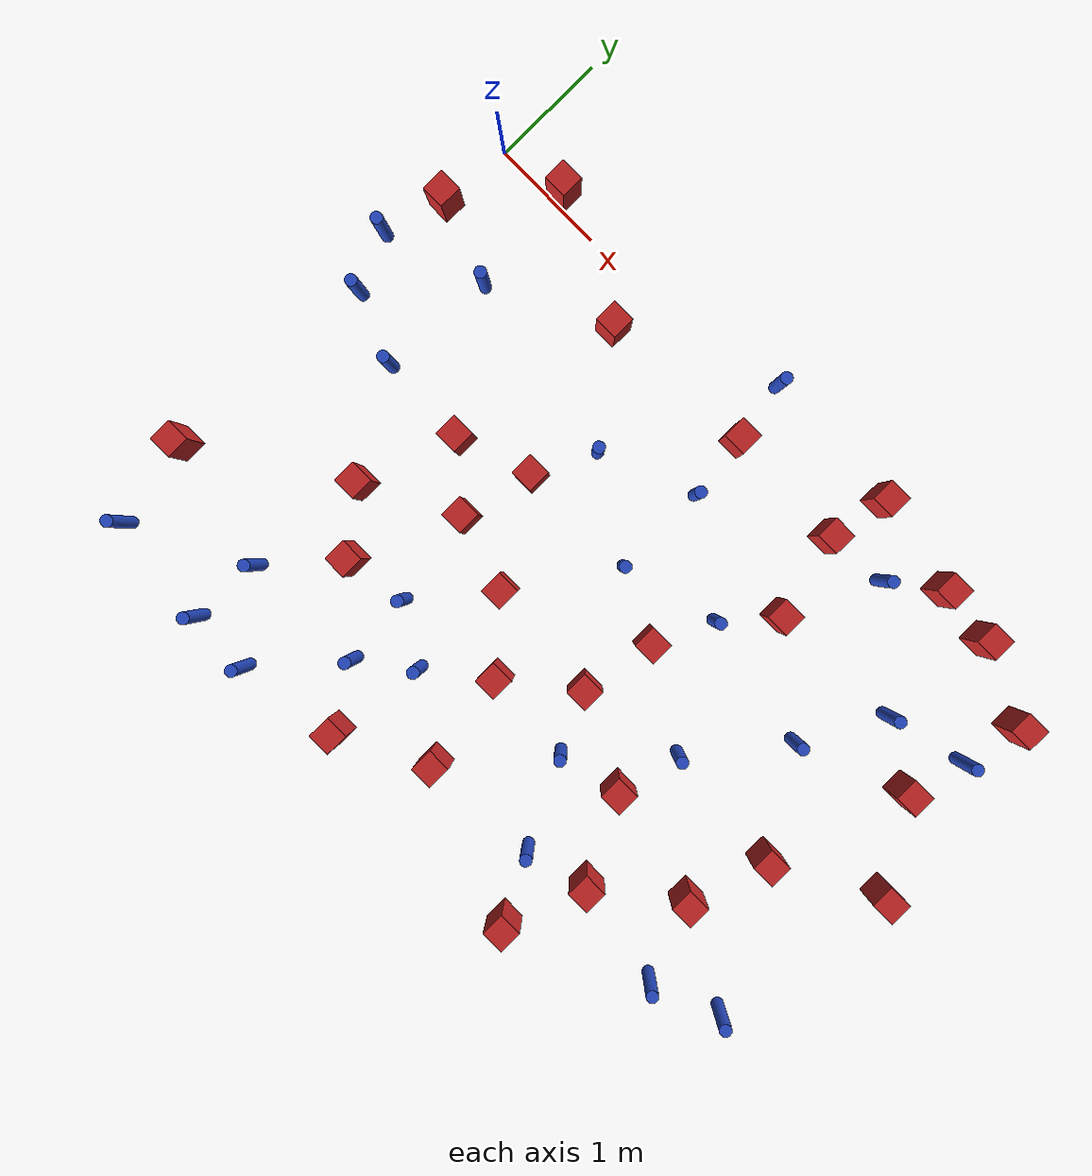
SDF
<sdf version="1.6">
 <model name="dense_19">
  <model name="pole_obstacle0">
   <static>true</static>
   <pose>2.88885699599 0.218342367784 2.88873142074e-08 -9.90536689395e-09 4.60219949e-07 -1.20965994954e-07</pose>
   <link name="link">
    <pose>0 0 0.3 0 -0 0</pose>
    <inertial>
     <mass>1</mass>
     <inertia><ixx>0.145833</ixx><ixy>0</ixy><ixz>0</ixz><iyy>0.145833</iyy><iyz>0</iyz><izz>0.125</izz></inertia>
    </inertial>
    <collision name="collision">
     <geometry><cylinder><radius>0.05</radius><length>.6</length></cylinder></geometry>
    </collision>
    <visual name="visual">
     <geometry><cylinder><radius>0.05</radius><length>.6</length></cylinder></geometry>
     <material>
      <script><name>Gazebo/Blue</name><uri>file://media/materials/scripts/gazebo.material</uri></script>
     </material>
    </visual>
   </link>
  </model>
  <model name="square_post_obstacle7">
   <static>true</static>
   <pose>1.63549741798 -0.384665157309 8.22691968438e-08 7.2212513382e-06 -7.54495500217e-07 2.29674213826e-05</pose>
   <link name="link">
    <pose>0 0 0.25 0 -0 0</pose>
    <inertial>
     <mass>100</mass>
     <inertia>
      <ixx>0.166667</ixx>
      <ixy>0</ixy>
      <ixz>0</ixz>
      <iyy>0.166667</iyy>
      <iyz>0</iyz>
      <izz>0.166667</izz>
     </inertia>
    </inertial>
    <collision name="collision"><geometry><box><size>.2 .2 .5</size></box></geometry></collision>
    <visual name="visual">
     <geometry><box><size>.2 .2 .5</size></box></geometry>
     <material>
      <script><name>Gazebo/Red</name><uri>file://media/materials/scripts/gazebo.material</uri></script>
     </material>
    </visual>
   </link>
  </model>
  <model name="pole_obstacle7">
   <static>true</static>
   <pose>5.50749667749 -3.81803511393 2.88873142074e-08 -9.90536690245e-09 4.6021994898e-07 -1.20965994966e-07</pose>
   <link name="link">
    <pose>0 0 0.3 0 -0 0</pose>
    <inertial>
     <mass>1</mass>
     <inertia><ixx>0.145833</ixx><ixy>0</ixy><ixz>0</ixz><iyy>0.145833</iyy><iyz>0</iyz><izz>0.125</izz></inertia>
    </inertial>
    <collision name="collision">
     <geometry><cylinder><radius>0.05</radius><length>.6</length></cylinder></geometry>
    </collision>
    <visual name="visual">
     <geometry><cylinder><radius>0.05</radius><length>.6</length></cylinder></geometry>
     <material>
      <script><name>Gazebo/Blue</name><uri>file://media/materials/scripts/gazebo.material</uri></script>
     </material>
    </visual>
   </link>
  </model>
  <model name="square_post_obstacle9">
   <static>true</static>
   <pose>2.50126027885 -2.48764107828 8.22691968438e-08 7.2212513382e-06 -7.54495500217e-07 2.29674213826e-05</pose>
   <link name="link">
    <pose>0 0 0.25 0 -0 0</pose>
    <inertial>
     <mass>100</mass>
     <inertia>
      <ixx>0.166667</ixx>
      <ixy>0</ixy>
      <ixz>0</ixz>
      <iyy>0.166667</iyy>
      <iyz>0</iyz>
      <izz>0.166667</izz>
     </inertia>
    </inertial>
    <collision name="collision"><geometry><box><size>.2 .2 .5</size></box></geometry></collision>
    <visual name="visual">
     <geometry><box><size>.2 .2 .5</size></box></geometry>
     <material>
      <script><name>Gazebo/Red</name><uri>file://media/materials/scripts/gazebo.material</uri></script>
     </material>
    </visual>
   </link>
  </model>
  <model name="square_post_obstacle24">
   <static>true</static>
   <pose>1.8701958105 -2.29422337343 8.22691968438e-08 7.2212513382e-06 -7.54495500217e-07 2.29674213826e-05</pose>
   <link name="link">
    <pose>0 0 0.25 0 -0 0</pose>
    <inertial>
     <mass>100</mass>
     <inertia>
      <ixx>0.166667</ixx>
      <ixy>0</ixy>
      <ixz>0</ixz>
      <iyy>0.166667</iyy>
      <iyz>0</iyz>
      <izz>0.166667</izz>
     </inertia>
    </inertial>
    <collision name="collision"><geometry><box><size>.2 .2 .5</size></box></geometry></collision>
    <visual name="visual">
     <geometry><box><size>.2 .2 .5</size></box></geometry>
     <material>
      <script><name>Gazebo/Red</name><uri>file://media/materials/scripts/gazebo.material</uri></script>
     </material>
    </visual>
   </link>
  </model>
  <model name="square_post_obstacle26">
   <static>true</static>
   <pose>-0.125004662885 -3.47699923398 8.22691968438e-08 7.22125133819e-06 -7.54495500217e-07 2.29674213826e-05</pose>
   <link name="link">
    <pose>0 0 0.25 0 -0 0</pose>
    <inertial>
     <mass>100</mass>
     <inertia>
      <ixx>0.166667</ixx>
      <ixy>0</ixy>
      <ixz>0</ixz>
      <iyy>0.166667</iyy>
      <iyz>0</iyz>
      <izz>0.166667</izz>
     </inertia>
    </inertial>
    <collision name="collision"><geometry><box><size>.2 .2 .5</size></box></geometry></collision>
    <visual name="visual">
     <geometry><box><size>.2 .2 .5</size></box></geometry>
     <material>
      <script><name>Gazebo/Red</name><uri>file://media/materials/scripts/gazebo.material</uri></script>
     </material>
    </visual>
   </link>
  </model>
  <model name="square_post_obstacle31">
   <static>true</static>
   <pose>4.20026988098 -1.06145336706 8.22691968438e-08 7.2212513382e-06 -7.54495500217e-07 2.29674213826e-05</pose>
   <link name="link">
    <pose>0 0 0.25 0 -0 0</pose>
    <inertial>
     <mass>100</mass>
     <inertia>
      <ixx>0.166667</ixx>
      <ixy>0</ixy>
      <ixz>0</ixz>
      <iyy>0.166667</iyy>
      <iyz>0</iyz>
      <izz>0.166667</izz>
     </inertia>
    </inertial>
    <collision name="collision"><geometry><box><size>.2 .2 .5</size></box></geometry></collision>
    <visual name="visual">
     <geometry><box><size>.2 .2 .5</size></box></geometry>
     <material>
      <script><name>Gazebo/Red</name><uri>file://media/materials/scripts/gazebo.material</uri></script>
     </material>
    </visual>
   </link>
  </model>
  <model name="pole_obstacle39">
   <static>true</static>
   <pose>6.07914142735 -3.60286633807 2.88873142074e-08 -9.90536690245e-09 4.6021994898e-07 -1.20965994966e-07</pose>
   <link name="link">
    <pose>0 0 0.3 0 -0 0</pose>
    <inertial>
     <mass>1</mass>
     <inertia><ixx>0.145833</ixx><ixy>0</ixy><ixz>0</ixz><iyy>0.145833</iyy><iyz>0</iyz><izz>0.125</izz></inertia>
    </inertial>
    <collision name="collision">
     <geometry><cylinder><radius>0.05</radius><length>.6</length></cylinder></geometry>
    </collision>
    <visual name="visual">
     <geometry><cylinder><radius>0.05</radius><length>.6</length></cylinder></geometry>
     <material>
      <script><name>Gazebo/Blue</name><uri>file://media/materials/scripts/gazebo.material</uri></script>
     </material>
    </visual>
   </link>
  </model>
  <model name="pole_obstacle48">
   <static>true</static>
   <pose>5.35859806863 -1.01544605363 2.88873142074e-08 -9.90536689582e-09 4.60219948995e-07 -1.20965994957e-07</pose>
   <link name="link">
    <pose>0 0 0.3 0 -0 0</pose>
    <inertial>
     <mass>1</mass>
     <inertia><ixx>0.145833</ixx><ixy>0</ixy><ixz>0</ixz><iyy>0.145833</iyy><iyz>0</iyz><izz>0.125</izz></inertia>
    </inertial>
    <collision name="collision">
     <geometry><cylinder><radius>0.05</radius><length>.6</length></cylinder></geometry>
    </collision>
    <visual name="visual">
     <geometry><cylinder><radius>0.05</radius><length>.6</length></cylinder></geometry>
     <material>
      <script><name>Gazebo/Blue</name><uri>file://media/materials/scripts/gazebo.material</uri></script>
     </material>
    </visual>
   </link>
  </model>
  <model name="square_post_obstacle50">
   <static>true</static>
   <pose>4.96751503702 0.0074582383252 8.22691968438e-08 7.2212513382e-06 -7.54495500217e-07 2.29674213826e-05</pose>
   <link name="link">
    <pose>0 0 0.25 0 -0 0</pose>
    <inertial>
     <mass>100</mass>
     <inertia>
      <ixx>0.166667</ixx>
      <ixy>0</ixy>
      <ixz>0</ixz>
      <iyy>0.166667</iyy>
      <iyz>0</iyz>
      <izz>0.166667</izz>
     </inertia>
    </inertial>
    <collision name="collision"><geometry><box><size>.2 .2 .5</size></box></geometry></collision>
    <visual name="visual">
     <geometry><box><size>.2 .2 .5</size></box></geometry>
     <material>
      <script><name>Gazebo/Red</name><uri>file://media/materials/scripts/gazebo.material</uri></script>
     </material>
    </visual>
   </link>
  </model>
  <model name="square_post_obstacle54">
   <static>true</static>
   <pose>6.33580919159 -2.04430219855 8.22691968438e-08 7.2212513382e-06 -7.54495500217e-07 2.29674213826e-05</pose>
   <link name="link">
    <pose>0 0 0.25 0 -0 0</pose>
    <inertial>
     <mass>100</mass>
     <inertia>
      <ixx>0.166667</ixx>
      <ixy>0</ixy>
      <ixz>0</ixz>
      <iyy>0.166667</iyy>
      <iyz>0</iyz>
      <izz>0.166667</izz>
     </inertia>
    </inertial>
    <collision name="collision"><geometry><box><size>.2 .2 .5</size></box></geometry></collision>
    <visual name="visual">
     <geometry><box><size>.2 .2 .5</size></box></geometry>
     <material>
      <script><name>Gazebo/Red</name><uri>file://media/materials/scripts/gazebo.material</uri></script>
     </material>
    </visual>
   </link>
  </model>
  <model name="pole_obstacle54">
   <static>true</static>
   <pose>2.25785999035 -1.17319295104 2.88873142074e-08 -9.90536689395e-09 4.60219949e-07 -1.20965994953e-07</pose>
   <link name="link">
    <pose>0 0 0.3 0 -0 0</pose>
    <inertial>
     <mass>1</mass>
     <inertia><ixx>0.145833</ixx><ixy>0</ixy><ixz>0</ixz><iyy>0.145833</iyy><iyz>0</iyz><izz>0.125</izz></inertia>
    </inertial>
    <collision name="collision">
     <geometry><cylinder><radius>0.05</radius><length>.6</length></cylinder></geometry>
    </collision>
    <visual name="visual">
     <geometry><cylinder><radius>0.05</radius><length>.6</length></cylinder></geometry>
     <material>
      <script><name>Gazebo/Blue</name><uri>file://media/materials/scripts/gazebo.material</uri></script>
     </material>
    </visual>
   </link>
  </model>
  <model name="square_post_obstacle58">
   <static>true</static>
   <pose>2.96455247818 -3.01054409783 8.22691968438e-08 7.2212513382e-06 -7.54495500217e-07 2.29674213826e-05</pose>
   <link name="link">
    <pose>0 0 0.25 0 -0 0</pose>
    <inertial>
     <mass>100</mass>
     <inertia>
      <ixx>0.166667</ixx>
      <ixy>0</ixy>
      <ixz>0</ixz>
      <iyy>0.166667</iyy>
      <iyz>0</iyz>
      <izz>0.166667</izz>
     </inertia>
    </inertial>
    <collision name="collision"><geometry><box><size>.2 .2 .5</size></box></geometry></collision>
    <visual name="visual">
     <geometry><box><size>.2 .2 .5</size></box></geometry>
     <material>
      <script><name>Gazebo/Red</name><uri>file://media/materials/scripts/gazebo.material</uri></script>
     </material>
    </visual>
   </link>
  </model>
  <model name="pole_obstacle57">
   <static>true</static>
   <pose>0.666566140551 -0.875571736039 2.88873142074e-08 -9.90536689967e-09 4.60219948986e-07 -1.20965994963e-07</pose>
   <link name="link">
    <pose>0 0 0.3 0 -0 0</pose>
    <inertial>
     <mass>1</mass>
     <inertia><ixx>0.145833</ixx><ixy>0</ixy><ixz>0</ixz><iyy>0.145833</iyy><iyz>0</iyz><izz>0.125</izz></inertia>
    </inertial>
    <collision name="collision">
     <geometry><cylinder><radius>0.05</radius><length>.6</length></cylinder></geometry>
    </collision>
    <visual name="visual">
     <geometry><cylinder><radius>0.05</radius><length>.6</length></cylinder></geometry>
     <material>
      <script><name>Gazebo/Blue</name><uri>file://media/materials/scripts/gazebo.material</uri></script>
     </material>
    </visual>
   </link>
  </model>
  <model name="square_post_obstacle64">
   <static>true</static>
   <pose>3.52086572161 -2.57109439381 8.22691968438e-08 7.2212513382e-06 -7.54495500217e-07 2.29674213826e-05</pose>
   <link name="link">
    <pose>0 0 0.25 0 -0 0</pose>
    <inertial>
     <mass>100</mass>
     <inertia>
      <ixx>0.166667</ixx>
      <ixy>0</ixy>
      <ixz>0</ixz>
      <iyy>0.166667</iyy>
      <iyz>0</iyz>
      <izz>0.166667</izz>
     </inertia>
    </inertial>
    <collision name="collision"><geometry><box><size>.2 .2 .5</size></box></geometry></collision>
    <visual name="visual">
     <geometry><box><size>.2 .2 .5</size></box></geometry>
     <material>
      <script><name>Gazebo/Red</name><uri>file://media/materials/scripts/gazebo.material</uri></script>
     </material>
    </visual>
   </link>
  </model>
  <model name="square_post_obstacle67">
   <static>true</static>
   <pose>3.1018461195 -3.83028561094 8.22691968438e-08 7.2212513382e-06 -7.54495500217e-07 2.29674213826e-05</pose>
   <link name="link">
    <pose>0 0 0.25 0 -0 0</pose>
    <inertial>
     <mass>100</mass>
     <inertia>
      <ixx>0.166667</ixx>
      <ixy>0</ixy>
      <ixz>0</ixz>
      <iyy>0.166667</iyy>
      <iyz>0</iyz>
      <izz>0.166667</izz>
     </inertia>
    </inertial>
    <collision name="collision"><geometry><box><size>.2 .2 .5</size></box></geometry></collision>
    <visual name="visual">
     <geometry><box><size>.2 .2 .5</size></box></geometry>
     <material>
      <script><name>Gazebo/Red</name><uri>file://media/materials/scripts/gazebo.material</uri></script>
     </material>
    </visual>
   </link>
  </model>
  <model name="pole_obstacle65">
   <static>true</static>
   <pose>6.03024125751 -0.854266662241 2.88873142074e-08 -9.90536689837e-09 4.60219948989e-07 -1.2096599496e-07</pose>
   <link name="link">
    <pose>0 0 0.3 0 -0 0</pose>
    <inertial>
     <mass>1</mass>
     <inertia><ixx>0.145833</ixx><ixy>0</ixy><ixz>0</ixz><iyy>0.145833</iyy><iyz>0</iyz><izz>0.125</izz></inertia>
    </inertial>
    <collision name="collision">
     <geometry><cylinder><radius>0.05</radius><length>.6</length></cylinder></geometry>
    </collision>
    <visual name="visual">
     <geometry><cylinder><radius>0.05</radius><length>.6</length></cylinder></geometry>
     <material>
      <script><name>Gazebo/Blue</name><uri>file://media/materials/scripts/gazebo.material</uri></script>
     </material>
    </visual>
   </link>
  </model>
  <model name="square_post_obstacle69">
   <static>true</static>
   <pose>4.27492066907 -2.94388003536 8.22691968438e-08 7.2212513382e-06 -7.54495500217e-07 2.29674213826e-05</pose>
   <link name="link">
    <pose>0 0 0.25 0 -0 0</pose>
    <inertial>
     <mass>100</mass>
     <inertia>
      <ixx>0.166667</ixx>
      <ixy>0</ixy>
      <ixz>0</ixz>
      <iyy>0.166667</iyy>
      <iyz>0</iyz>
      <izz>0.166667</izz>
     </inertia>
    </inertial>
    <collision name="collision"><geometry><box><size>.2 .2 .5</size></box></geometry></collision>
    <visual name="visual">
     <geometry><box><size>.2 .2 .5</size></box></geometry>
     <material>
      <script><name>Gazebo/Red</name><uri>file://media/materials/scripts/gazebo.material</uri></script>
     </material>
    </visual>
   </link>
  </model>
  <model name="square_post_obstacle73">
   <static>true</static>
   <pose>5.48747656037 -2.49697505619 8.22691968438e-08 7.2212513382e-06 -7.54495500217e-07 2.29674213826e-05</pose>
   <link name="link">
    <pose>0 0 0.25 0 -0 0</pose>
    <inertial>
     <mass>100</mass>
     <inertia>
      <ixx>0.166667</ixx>
      <ixy>0</ixy>
      <ixz>0</ixz>
      <iyy>0.166667</iyy>
      <iyz>0</iyz>
      <izz>0.166667</izz>
     </inertia>
    </inertial>
    <collision name="collision"><geometry><box><size>.2 .2 .5</size></box></geometry></collision>
    <visual name="visual">
     <geometry><box><size>.2 .2 .5</size></box></geometry>
     <material>
      <script><name>Gazebo/Red</name><uri>file://media/materials/scripts/gazebo.material</uri></script>
     </material>
    </visual>
   </link>
  </model>
  <model name="square_post_obstacle74">
   <static>true</static>
   <pose>1.09983535135 -2.69447167061 8.22691968438e-08 7.2212513382e-06 -7.54495500217e-07 2.29674213826e-05</pose>
   <link name="link">
    <pose>0 0 0.25 0 -0 0</pose>
    <inertial>
     <mass>100</mass>
     <inertia>
      <ixx>0.166667</ixx>
      <ixy>0</ixy>
      <ixz>0</ixz>
      <iyy>0.166667</iyy>
      <iyz>0</iyz>
      <izz>0.166667</izz>
     </inertia>
    </inertial>
    <collision name="collision"><geometry><box><size>.2 .2 .5</size></box></geometry></collision>
    <visual name="visual">
     <geometry><box><size>.2 .2 .5</size></box></geometry>
     <material>
      <script><name>Gazebo/Red</name><uri>file://media/materials/scripts/gazebo.material</uri></script>
     </material>
    </visual>
   </link>
  </model>
  <model name="pole_obstacle72">
   <static>true</static>
   <pose>-0.188298759405 -1.14795797744 2.88873142074e-08 -9.90536689666e-09 4.60219948993e-07 -1.20965994958e-07</pose>
   <link name="link">
    <pose>0 0 0.3 0 -0 0</pose>
    <inertial>
     <mass>1</mass>
     <inertia><ixx>0.145833</ixx><ixy>0</ixy><ixz>0</ixz><iyy>0.145833</iyy><iyz>0</iyz><izz>0.125</izz></inertia>
    </inertial>
    <collision name="collision">
     <geometry><cylinder><radius>0.05</radius><length>.6</length></cylinder></geometry>
    </collision>
    <visual name="visual">
     <geometry><cylinder><radius>0.05</radius><length>.6</length></cylinder></geometry>
     <material>
      <script><name>Gazebo/Blue</name><uri>file://media/materials/scripts/gazebo.material</uri></script>
     </material>
    </visual>
   </link>
  </model>
  <model name="square_post_obstacle77">
   <static>true</static>
   <pose>0.577861326166 0.104650209226 8.22691968438e-08 7.2212513382e-06 -7.54495500217e-07 2.29674213826e-05</pose>
   <link name="link">
    <pose>0 0 0.25 0 -0 0</pose>
    <inertial>
     <mass>100</mass>
     <inertia>
      <ixx>0.166667</ixx>
      <ixy>0</ixy>
      <ixz>0</ixz>
      <iyy>0.166667</iyy>
      <iyz>0</iyz>
      <izz>0.166667</izz>
     </inertia>
    </inertial>
    <collision name="collision"><geometry><box><size>.2 .2 .5</size></box></geometry></collision>
    <visual name="visual">
     <geometry><box><size>.2 .2 .5</size></box></geometry>
     <material>
      <script><name>Gazebo/Red</name><uri>file://media/materials/scripts/gazebo.material</uri></script>
     </material>
    </visual>
   </link>
  </model>
  <model name="pole_obstacle80">
   <static>true</static>
   <pose>4.985046342 -1.68550418916 2.88873142074e-08 -9.90536689445e-09 4.60219948999e-07 -1.20965994956e-07</pose>
   <link name="link">
    <pose>0 0 0.3 0 -0 0</pose>
    <inertial>
     <mass>1</mass>
     <inertia><ixx>0.145833</ixx><ixy>0</ixy><ixz>0</ixz><iyy>0.145833</iyy><iyz>0</iyz><izz>0.125</izz></inertia>
    </inertial>
    <collision name="collision">
     <geometry><cylinder><radius>0.05</radius><length>.6</length></cylinder></geometry>
    </collision>
    <visual name="visual">
     <geometry><cylinder><radius>0.05</radius><length>.6</length></cylinder></geometry>
     <material>
      <script><name>Gazebo/Blue</name><uri>file://media/materials/scripts/gazebo.material</uri></script>
     </material>
    </visual>
   </link>
  </model>
  <model name="pole_obstacle91">
   <static>true</static>
   <pose>1.49995526968 -4.36305457644 2.88873142074e-08 -9.90536689852e-09 4.60219948989e-07 -1.2096599496e-07</pose>
   <link name="link">
    <pose>0 0 0.3 0 -0 0</pose>
    <inertial>
     <mass>1</mass>
     <inertia><ixx>0.145833</ixx><ixy>0</ixy><ixz>0</ixz><iyy>0.145833</iyy><iyz>0</iyz><izz>0.125</izz></inertia>
    </inertial>
    <collision name="collision">
     <geometry><cylinder><radius>0.05</radius><length>.6</length></cylinder></geometry>
    </collision>
    <visual name="visual">
     <geometry><cylinder><radius>0.05</radius><length>.6</length></cylinder></geometry>
     <material>
      <script><name>Gazebo/Blue</name><uri>file://media/materials/scripts/gazebo.material</uri></script>
     </material>
    </visual>
   </link>
  </model>
  <model name="pole_obstacle93">
   <static>true</static>
   <pose>3.0476981293 -0.860500871558 2.88873142074e-08 -9.90536689285e-09 4.60219949002e-07 -1.20965994953e-07</pose>
   <link name="link">
    <pose>0 0 0.3 0 -0 0</pose>
    <inertial>
     <mass>1</mass>
     <inertia><ixx>0.145833</ixx><ixy>0</ixy><ixz>0</ixz><iyy>0.145833</iyy><iyz>0</iyz><izz>0.125</izz></inertia>
    </inertial>
    <collision name="collision">
     <geometry><cylinder><radius>0.05</radius><length>.6</length></cylinder></geometry>
    </collision>
    <visual name="visual">
     <geometry><cylinder><radius>0.05</radius><length>.6</length></cylinder></geometry>
     <material>
      <script><name>Gazebo/Blue</name><uri>file://media/materials/scripts/gazebo.material</uri></script>
     </material>
    </visual>
   </link>
  </model>
  <model name="square_post_obstacle84">
   <static>true</static>
   <pose>5.2700895419 -3.16116330334 8.22691968438e-08 7.2212513382e-06 -7.54495500217e-07 2.29674213826e-05</pose>
   <link name="link">
    <pose>0 0 0.25 0 -0 0</pose>
    <inertial>
     <mass>100</mass>
     <inertia>
      <ixx>0.166667</ixx>
      <ixy>0</ixy>
      <ixz>0</ixz>
      <iyy>0.166667</iyy>
      <iyz>0</iyz>
      <izz>0.166667</izz>
     </inertia>
    </inertial>
    <collision name="collision"><geometry><box><size>.2 .2 .5</size></box></geometry></collision>
    <visual name="visual">
     <geometry><box><size>.2 .2 .5</size></box></geometry>
     <material>
      <script><name>Gazebo/Red</name><uri>file://media/materials/scripts/gazebo.material</uri></script>
     </material>
    </visual>
   </link>
  </model>
  <model name="square_post_obstacle89">
   <static>true</static>
   <pose>4.37964779241 -4.32261460774 8.22691968438e-08 7.22125133819e-06 -7.54495500217e-07 2.29674213826e-05</pose>
   <link name="link">
    <pose>0 0 0.25 0 -0 0</pose>
    <inertial>
     <mass>100</mass>
     <inertia>
      <ixx>0.166667</ixx>
      <ixy>0</ixy>
      <ixz>0</ixz>
      <iyy>0.166667</iyy>
      <iyz>0</iyz>
      <izz>0.166667</izz>
     </inertia>
    </inertial>
    <collision name="collision"><geometry><box><size>.2 .2 .5</size></box></geometry></collision>
    <visual name="visual">
     <geometry><box><size>.2 .2 .5</size></box></geometry>
     <material>
      <script><name>Gazebo/Red</name><uri>file://media/materials/scripts/gazebo.material</uri></script>
     </material>
    </visual>
   </link>
  </model>
  <model name="pole_obstacle104">
   <static>true</static>
   <pose>2.01143298686 -3.09226912773 2.88873142074e-08 -9.9053669043e-09 4.60219948975e-07 -1.2096599497e-07</pose>
   <link name="link">
    <pose>0 0 0.3 0 -0 0</pose>
    <inertial>
     <mass>1</mass>
     <inertia><ixx>0.145833</ixx><ixy>0</ixy><ixz>0</ixz><iyy>0.145833</iyy><iyz>0</iyz><izz>0.125</izz></inertia>
    </inertial>
    <collision name="collision">
     <geometry><cylinder><radius>0.05</radius><length>.6</length></cylinder></geometry>
    </collision>
    <visual name="visual">
     <geometry><cylinder><radius>0.05</radius><length>.6</length></cylinder></geometry>
     <material>
      <script><name>Gazebo/Blue</name><uri>file://media/materials/scripts/gazebo.material</uri></script>
     </material>
    </visual>
   </link>
  </model>
  <model name="pole_obstacle114">
   <static>true</static>
   <pose>3.0493330959 -1.67011264166 2.88873142074e-08 -9.90536689395e-09 4.60219949e-07 -1.20965994953e-07</pose>
   <link name="link">
    <pose>0 0 0.3 0 -0 0</pose>
    <inertial>
     <mass>1</mass>
     <inertia><ixx>0.145833</ixx><ixy>0</ixy><ixz>0</ixz><iyy>0.145833</iyy><iyz>0</iyz><izz>0.125</izz></inertia>
    </inertial>
    <collision name="collision">
     <geometry><cylinder><radius>0.05</radius><length>.6</length></cylinder></geometry>
    </collision>
    <visual name="visual">
     <geometry><cylinder><radius>0.05</radius><length>.6</length></cylinder></geometry>
     <material>
      <script><name>Gazebo/Blue</name><uri>file://media/materials/scripts/gazebo.material</uri></script>
     </material>
    </visual>
   </link>
  </model>
  <model name="square_post_obstacle115">
   <static>true</static>
   <pose>2.97482575073 -0.312013435311 8.22691968438e-08 7.2212513382e-06 -7.54495500217e-07 2.29674213826e-05</pose>
   <link name="link">
    <pose>0 0 0.25 0 -0 0</pose>
    <inertial>
     <mass>100</mass>
     <inertia>
      <ixx>0.166667</ixx>
      <ixy>0</ixy>
      <ixz>0</ixz>
      <iyy>0.166667</iyy>
      <iyz>0</iyz>
      <izz>0.166667</izz>
     </inertia>
    </inertial>
    <collision name="collision"><geometry><box><size>.2 .2 .5</size></box></geometry></collision>
    <visual name="visual">
     <geometry><box><size>.2 .2 .5</size></box></geometry>
     <material>
      <script><name>Gazebo/Red</name><uri>file://media/materials/scripts/gazebo.material</uri></script>
     </material>
    </visual>
   </link>
  </model>
  <model name="square_post_obstacle122">
   <static>true</static>
   <pose>5.46742240595 -0.0497189341731 8.22691968438e-08 7.2212513382e-06 -7.54495500217e-07 2.29674213826e-05</pose>
   <link name="link">
    <pose>0 0 0.25 0 -0 0</pose>
    <inertial>
     <mass>100</mass>
     <inertia>
      <ixx>0.166667</ixx>
      <ixy>0</ixy>
      <ixz>0</ixz>
      <iyy>0.166667</iyy>
      <iyz>0</iyz>
      <izz>0.166667</izz>
     </inertia>
    </inertial>
    <collision name="collision"><geometry><box><size>.2 .2 .5</size></box></geometry></collision>
    <visual name="visual">
     <geometry><box><size>.2 .2 .5</size></box></geometry>
     <material>
      <script><name>Gazebo/Red</name><uri>file://media/materials/scripts/gazebo.material</uri></script>
     </material>
    </visual>
   </link>
  </model>
  <model name="square_post_obstacle125">
   <static>true</static>
   <pose>4.0246564746 -0.345391969822 8.22691968438e-08 7.2212513382e-06 -7.54495500217e-07 2.29674213826e-05</pose>
   <link name="link">
    <pose>0 0 0.25 0 -0 0</pose>
    <inertial>
     <mass>100</mass>
     <inertia>
      <ixx>0.166667</ixx>
      <ixy>0</ixy>
      <ixz>0</ixz>
      <iyy>0.166667</iyy>
      <iyz>0</iyz>
      <izz>0.166667</izz>
     </inertia>
    </inertial>
    <collision name="collision"><geometry><box><size>.2 .2 .5</size></box></geometry></collision>
    <visual name="visual">
     <geometry><box><size>.2 .2 .5</size></box></geometry>
     <material>
      <script><name>Gazebo/Red</name><uri>file://media/materials/scripts/gazebo.material</uri></script>
     </material>
    </visual>
   </link>
  </model>
  <model name="pole_obstacle142">
   <static>true</static>
   <pose>4.56555406588 -0.298374908035 2.88873142074e-08 -9.9053668927e-09 4.60219949003e-07 -1.20965994954e-07</pose>
   <link name="link">
    <pose>0 0 0.3 0 -0 0</pose>
    <inertial>
     <mass>1</mass>
     <inertia><ixx>0.145833</ixx><ixy>0</ixy><ixz>0</ixz><iyy>0.145833</iyy><iyz>0</iyz><izz>0.125</izz></inertia>
    </inertial>
    <collision name="collision">
     <geometry><cylinder><radius>0.05</radius><length>.6</length></cylinder></geometry>
    </collision>
    <visual name="visual">
     <geometry><cylinder><radius>0.05</radius><length>.6</length></cylinder></geometry>
     <material>
      <script><name>Gazebo/Blue</name><uri>file://media/materials/scripts/gazebo.material</uri></script>
     </material>
    </visual>
   </link>
  </model>
  <model name="pole_obstacle143">
   <static>true</static>
   <pose>0.0179665733012 -4.23759715565 2.88873142074e-08 -9.9053668965e-09 4.60219948994e-07 -1.20965994958e-07</pose>
   <link name="link">
    <pose>0 0 0.3 0 -0 0</pose>
    <inertial>
     <mass>1</mass>
     <inertia><ixx>0.145833</ixx><ixy>0</ixy><ixz>0</ixz><iyy>0.145833</iyy><iyz>0</iyz><izz>0.125</izz></inertia>
    </inertial>
    <collision name="collision">
     <geometry><cylinder><radius>0.05</radius><length>.6</length></cylinder></geometry>
    </collision>
    <visual name="visual">
     <geometry><cylinder><radius>0.05</radius><length>.6</length></cylinder></geometry>
     <material>
      <script><name>Gazebo/Blue</name><uri>file://media/materials/scripts/gazebo.material</uri></script>
     </material>
    </visual>
   </link>
  </model>
  <model name="pole_obstacle144">
   <static>true</static>
   <pose>0.994830304478 -3.73205569937 2.88873142074e-08 -9.90536689802e-09 4.6021994899e-07 -1.2096599496e-07</pose>
   <link name="link">
    <pose>0 0 0.3 0 -0 0</pose>
    <inertial>
     <mass>1</mass>
     <inertia><ixx>0.145833</ixx><ixy>0</ixy><ixz>0</ixz><iyy>0.145833</iyy><iyz>0</iyz><izz>0.125</izz></inertia>
    </inertial>
    <collision name="collision">
     <geometry><cylinder><radius>0.05</radius><length>.6</length></cylinder></geometry>
    </collision>
    <visual name="visual">
     <geometry><cylinder><radius>0.05</radius><length>.6</length></cylinder></geometry>
     <material>
      <script><name>Gazebo/Blue</name><uri>file://media/materials/scripts/gazebo.material</uri></script>
     </material>
    </visual>
   </link>
  </model>
  <model name="pole_obstacle147">
   <static>true</static>
   <pose>0.0146981119921 -1.62242924073 2.88873142074e-08 -9.90536690187e-09 4.60219948981e-07 -1.20965994964e-07</pose>
   <link name="link">
    <pose>0 0 0.3 0 -0 0</pose>
    <inertial>
     <mass>1</mass>
     <inertia><ixx>0.145833</ixx><ixy>0</ixy><ixz>0</ixz><iyy>0.145833</iyy><iyz>0</iyz><izz>0.125</izz></inertia>
    </inertial>
    <collision name="collision">
     <geometry><cylinder><radius>0.05</radius><length>.6</length></cylinder></geometry>
    </collision>
    <visual name="visual">
     <geometry><cylinder><radius>0.05</radius><length>.6</length></cylinder></geometry>
     <material>
      <script><name>Gazebo/Blue</name><uri>file://media/materials/scripts/gazebo.material</uri></script>
     </material>
    </visual>
   </link>
  </model>
  <model name="pole_obstacle148">
   <static>true</static>
   <pose>2.48455865989 -3.38825252655 2.88873142074e-08 -9.90536690232e-09 4.6021994898e-07 -1.20965994968e-07</pose>
   <link name="link">
    <pose>0 0 0.3 0 -0 0</pose>
    <inertial>
     <mass>1</mass>
     <inertia><ixx>0.145833</ixx><ixy>0</ixy><ixz>0</ixz><iyy>0.145833</iyy><iyz>0</iyz><izz>0.125</izz></inertia>
    </inertial>
    <collision name="collision">
     <geometry><cylinder><radius>0.05</radius><length>.6</length></cylinder></geometry>
    </collision>
    <visual name="visual">
     <geometry><cylinder><radius>0.05</radius><length>.6</length></cylinder></geometry>
     <material>
      <script><name>Gazebo/Blue</name><uri>file://media/materials/scripts/gazebo.material</uri></script>
     </material>
    </visual>
   </link>
  </model>
  <model name="pole_obstacle149">
   <static>true</static>
   <pose>0.604434591766 -1.8580674986 2.88873142074e-08 -9.90536689855e-09 4.60219948989e-07 -1.20965994962e-07</pose>
   <link name="link">
    <pose>0 0 0.3 0 -0 0</pose>
    <inertial>
     <mass>1</mass>
     <inertia><ixx>0.145833</ixx><ixy>0</ixy><ixz>0</ixz><iyy>0.145833</iyy><iyz>0</iyz><izz>0.125</izz></inertia>
    </inertial>
    <collision name="collision">
     <geometry><cylinder><radius>0.05</radius><length>.6</length></cylinder></geometry>
    </collision>
    <visual name="visual">
     <geometry><cylinder><radius>0.05</radius><length>.6</length></cylinder></geometry>
     <material>
      <script><name>Gazebo/Blue</name><uri>file://media/materials/scripts/gazebo.material</uri></script>
     </material>
    </visual>
   </link>
  </model>
  <model name="pole_obstacle150">
   <static>true</static>
   <pose>4.41091722289 -2.41075555168 2.88873142074e-08 -9.90536690245e-09 4.6021994898e-07 -1.20965994966e-07</pose>
   <link name="link">
    <pose>0 0 0.3 0 -0 0</pose>
    <inertial>
     <mass>1</mass>
     <inertia><ixx>0.145833</ixx><ixy>0</ixy><ixz>0</ixz><iyy>0.145833</iyy><iyz>0</iyz><izz>0.125</izz></inertia>
    </inertial>
    <collision name="collision">
     <geometry><cylinder><radius>0.05</radius><length>.6</length></cylinder></geometry>
    </collision>
    <visual name="visual">
     <geometry><cylinder><radius>0.05</radius><length>.6</length></cylinder></geometry>
     <material>
      <script><name>Gazebo/Blue</name><uri>file://media/materials/scripts/gazebo.material</uri></script>
     </material>
    </visual>
   </link>
  </model>
  <model name="pole_obstacle157">
   <static>true</static>
   <pose>0.956785338361 -4.34297784776 2.88873142074e-08 -9.90536689421e-09 4.60219948999e-07 -1.20965994953e-07</pose>
   <link name="link">
    <pose>0 0 0.3 0 -0 0</pose>
    <inertial>
     <mass>1</mass>
     <inertia><ixx>0.145833</ixx><ixy>0</ixy><ixz>0</ixz><iyy>0.145833</iyy><iyz>0</iyz><izz>0.125</izz></inertia>
    </inertial>
    <collision name="collision">
     <geometry><cylinder><radius>0.05</radius><length>.6</length></cylinder></geometry>
    </collision>
    <visual name="visual">
     <geometry><cylinder><radius>0.05</radius><length>.6</length></cylinder></geometry>
     <material>
      <script><name>Gazebo/Blue</name><uri>file://media/materials/scripts/gazebo.material</uri></script>
     </material>
    </visual>
   </link>
  </model>
  <model name="square_post_obstacle156">
   <static>true</static>
   <pose>3.63489516402 -1.94305860437 8.22691968438e-08 7.22125133819e-06 -7.54495500217e-07 2.29674213826e-05</pose>
   <link name="link">
    <pose>0 0 0.25 0 -0 0</pose>
    <inertial>
     <mass>100</mass>
     <inertia>
      <ixx>0.166667</ixx>
      <ixy>0</ixy>
      <ixz>0</ixz>
      <iyy>0.166667</iyy>
      <iyz>0</iyz>
      <izz>0.166667</izz>
     </inertia>
    </inertial>
    <collision name="collision"><geometry><box><size>.2 .2 .5</size></box></geometry></collision>
    <visual name="visual">
     <geometry><box><size>.2 .2 .5</size></box></geometry>
     <material>
      <script><name>Gazebo/Red</name><uri>file://media/materials/scripts/gazebo.material</uri></script>
     </material>
    </visual>
   </link>
  </model>
  <model name="square_post_obstacle161">
   <static>true</static>
   <pose>-0.0276905143778 -0.624785563262 8.22691968438e-08 7.2212513382e-06 -7.54495500217e-07 2.29674213826e-05</pose>
   <link name="link">
    <pose>0 0 0.25 0 -0 0</pose>
    <inertial>
     <mass>100</mass>
     <inertia>
      <ixx>0.166667</ixx>
      <ixy>0</ixy>
      <ixz>0</ixz>
      <iyy>0.166667</iyy>
      <iyz>0</iyz>
      <izz>0.166667</izz>
     </inertia>
    </inertial>
    <collision name="collision"><geometry><box><size>.2 .2 .5</size></box></geometry></collision>
    <visual name="visual">
     <geometry><box><size>.2 .2 .5</size></box></geometry>
     <material>
      <script><name>Gazebo/Red</name><uri>file://media/materials/scripts/gazebo.material</uri></script>
     </material>
    </visual>
   </link>
  </model>
  <model name="pole_obstacle176">
   <static>true</static>
   <pose>3.74537529995 -3.06199445391 2.88873142074e-08 -9.90536690232e-09 4.6021994898e-07 -1.20965994968e-07</pose>
   <link name="link">
    <pose>0 0 0.3 0 -0 0</pose>
    <inertial>
     <mass>1</mass>
     <inertia><ixx>0.145833</ixx><ixy>0</ixy><ixz>0</ixz><iyy>0.145833</iyy><iyz>0</iyz><izz>0.125</izz></inertia>
    </inertial>
    <collision name="collision">
     <geometry><cylinder><radius>0.05</radius><length>.6</length></cylinder></geometry>
    </collision>
    <visual name="visual">
     <geometry><cylinder><radius>0.05</radius><length>.6</length></cylinder></geometry>
     <material>
      <script><name>Gazebo/Blue</name><uri>file://media/materials/scripts/gazebo.material</uri></script>
     </material>
    </visual>
   </link>
  </model>
  <model name="square_post_obstacle167">
   <static>true</static>
   <pose>1.39172656039 -1.88307533844 8.22691968438e-08 7.2212513382e-06 -7.54495500217e-07 2.29674213826e-05</pose>
   <link name="link">
    <pose>0 0 0.25 0 -0 0</pose>
    <inertial>
     <mass>100</mass>
     <inertia>
      <ixx>0.166667</ixx>
      <ixy>0</ixy>
      <ixz>0</ixz>
      <iyy>0.166667</iyy>
      <iyz>0</iyz>
      <izz>0.166667</izz>
     </inertia>
    </inertial>
    <collision name="collision"><geometry><box><size>.2 .2 .5</size></box></geometry></collision>
    <visual name="visual">
     <geometry><box><size>.2 .2 .5</size></box></geometry>
     <material>
      <script><name>Gazebo/Red</name><uri>file://media/materials/scripts/gazebo.material</uri></script>
     </material>
    </visual>
   </link>
  </model>
  <model name="square_post_obstacle168">
   <static>true</static>
   <pose>5.88237172255 -1.33748804982 8.22691968438e-08 7.2212513382e-06 -7.54495500217e-07 2.29674213826e-05</pose>
   <link name="link">
    <pose>0 0 0.25 0 -0 0</pose>
    <inertial>
     <mass>100</mass>
     <inertia>
      <ixx>0.166667</ixx>
      <ixy>0</ixy>
      <ixz>0</ixz>
      <iyy>0.166667</iyy>
      <iyz>0</iyz>
      <izz>0.166667</izz>
     </inertia>
    </inertial>
    <collision name="collision"><geometry><box><size>.2 .2 .5</size></box></geometry></collision>
    <visual name="visual">
     <geometry><box><size>.2 .2 .5</size></box></geometry>
     <material>
      <script><name>Gazebo/Red</name><uri>file://media/materials/scripts/gazebo.material</uri></script>
     </material>
    </visual>
   </link>
  </model>
  <model name="pole_obstacle181">
   <static>true</static>
   <pose>4.09976904861 -3.77664200436 2.88873142074e-08 -9.90536690245e-09 4.6021994898e-07 -1.20965994966e-07</pose>
   <link name="link">
    <pose>0 0 0.3 0 -0 0</pose>
    <inertial>
     <mass>1</mass>
     <inertia><ixx>0.145833</ixx><ixy>0</ixy><ixz>0</ixz><iyy>0.145833</iyy><iyz>0</iyz><izz>0.125</izz></inertia>
    </inertial>
    <collision name="collision">
     <geometry><cylinder><radius>0.05</radius><length>.6</length></cylinder></geometry>
    </collision>
    <visual name="visual">
     <geometry><cylinder><radius>0.05</radius><length>.6</length></cylinder></geometry>
     <material>
      <script><name>Gazebo/Blue</name><uri>file://media/materials/scripts/gazebo.material</uri></script>
     </material>
    </visual>
   </link>
  </model>
  <model name="square_post_obstacle172">
   <static>true</static>
   <pose>6.13858123644 -0.351269854407 8.22691968438e-08 7.2212513382e-06 -7.54495500217e-07 2.29674213826e-05</pose>
   <link name="link">
    <pose>0 0 0.25 0 -0 0</pose>
    <inertial>
     <mass>100</mass>
     <inertia>
      <ixx>0.166667</ixx>
      <ixy>0</ixy>
      <ixz>0</ixz>
      <iyy>0.166667</iyy>
      <iyz>0</iyz>
      <izz>0.166667</izz>
     </inertia>
    </inertial>
    <collision name="collision"><geometry><box><size>.2 .2 .5</size></box></geometry></collision>
    <visual name="visual">
     <geometry><box><size>.2 .2 .5</size></box></geometry>
     <material>
      <script><name>Gazebo/Red</name><uri>file://media/materials/scripts/gazebo.material</uri></script>
     </material>
    </visual>
   </link>
  </model>
  <model name="square_post_obstacle173">
   <static>true</static>
   <pose>4.12269987749 0.162556284942 8.22691968438e-08 7.2212513382e-06 -7.54495500217e-07 2.29674213826e-05</pose>
   <link name="link">
    <pose>0 0 0.25 0 -0 0</pose>
    <inertial>
     <mass>100</mass>
     <inertia>
      <ixx>0.166667</ixx>
      <ixy>0</ixy>
      <ixz>0</ixz>
      <iyy>0.166667</iyy>
      <iyz>0</iyz>
      <izz>0.166667</izz>
     </inertia>
    </inertial>
    <collision name="collision"><geometry><box><size>.2 .2 .5</size></box></geometry></collision>
    <visual name="visual">
     <geometry><box><size>.2 .2 .5</size></box></geometry>
     <material>
      <script><name>Gazebo/Red</name><uri>file://media/materials/scripts/gazebo.material</uri></script>
     </material>
    </visual>
   </link>
  </model>
  <model name="square_post_obstacle177">
   <static>true</static>
   <pose>2.36703555873 -4.21192141958 8.22691968438e-08 7.2212513382e-06 -7.54495500217e-07 2.29674213826e-05</pose>
   <link name="link">
    <pose>0 0 0.25 0 -0 0</pose>
    <inertial>
     <mass>100</mass>
     <inertia>
      <ixx>0.166667</ixx>
      <ixy>0</ixy>
      <ixz>0</ixz>
      <iyy>0.166667</iyy>
      <iyz>0</iyz>
      <izz>0.166667</izz>
     </inertia>
    </inertial>
    <collision name="collision"><geometry><box><size>.2 .2 .5</size></box></geometry></collision>
    <visual name="visual">
     <geometry><box><size>.2 .2 .5</size></box></geometry>
     <material>
      <script><name>Gazebo/Red</name><uri>file://media/materials/scripts/gazebo.material</uri></script>
     </material>
    </visual>
   </link>
  </model>
  <model name="square_post_obstacle195">
   <static>true</static>
   <pose>1.48001171566 -3.17091634264 8.22691968438e-08 7.2212513382e-06 -7.54495500217e-07 2.29674213826e-05</pose>
   <link name="link">
    <pose>0 0 0.25 0 -0 0</pose>
    <inertial>
     <mass>100</mass>
     <inertia>
      <ixx>0.166667</ixx>
      <ixy>0</ixy>
      <ixz>0</ixz>
      <iyy>0.166667</iyy>
      <iyz>0</iyz>
      <izz>0.166667</izz>
     </inertia>
    </inertial>
    <collision name="collision"><geometry><box><size>.2 .2 .5</size></box></geometry></collision>
    <visual name="visual">
     <geometry><box><size>.2 .2 .5</size></box></geometry>
     <material>
      <script><name>Gazebo/Red</name><uri>file://media/materials/scripts/gazebo.material</uri></script>
     </material>
    </visual>
   </link>
  </model>
  <model name="square_post_obstacle206">
   <static>true</static>
   <pose>2.02051066695 -1.68080196367 8.22691968438e-08 7.2212513382e-06 -7.54495500217e-07 2.29674213826e-05</pose>
   <link name="link">
    <pose>0 0 0.25 0 -0 0</pose>
    <inertial>
     <mass>100</mass>
     <inertia>
      <ixx>0.166667</ixx>
      <ixy>0</ixy>
      <ixz>0</ixz>
      <iyy>0.166667</iyy>
      <iyz>0</iyz>
      <izz>0.166667</izz>
     </inertia>
    </inertial>
    <collision name="collision"><geometry><box><size>.2 .2 .5</size></box></geometry></collision>
    <visual name="visual">
     <geometry><box><size>.2 .2 .5</size></box></geometry>
     <material>
      <script><name>Gazebo/Red</name><uri>file://media/materials/scripts/gazebo.material</uri></script>
     </material>
    </visual>
   </link>
  </model>
  <model name="pole_obstacle202">
   <static>true</static>
   <pose>2.06511179851 -3.70739348728 2.88873142074e-08 -9.90536690232e-09 4.6021994898e-07 -1.20965994968e-07</pose>
   <link name="link">
    <pose>0 0 0.3 0 -0 0</pose>
    <inertial>
     <mass>1</mass>
     <inertia><ixx>0.145833</ixx><ixy>0</ixy><ixz>0</ixz><iyy>0.145833</iyy><iyz>0</iyz><izz>0.125</izz></inertia>
    </inertial>
    <collision name="collision">
     <geometry><cylinder><radius>0.05</radius><length>.6</length></cylinder></geometry>
    </collision>
    <visual name="visual">
     <geometry><cylinder><radius>0.05</radius><length>.6</length></cylinder></geometry>
     <material>
      <script><name>Gazebo/Blue</name><uri>file://media/materials/scripts/gazebo.material</uri></script>
     </material>
    </visual>
   </link>
  </model>
  <model name="pole_obstacle207">
   <static>true</static>
   <pose>3.86675022084 -1.45819266499 2.88873142074e-08 -9.90536689395e-09 4.60219949e-07 -1.20965994953e-07</pose>
   <link name="link">
    <pose>0 0 0.3 0 -0 0</pose>
    <inertial>
     <mass>1</mass>
     <inertia><ixx>0.145833</ixx><ixy>0</ixy><ixz>0</ixz><iyy>0.145833</iyy><iyz>0</iyz><izz>0.125</izz></inertia>
    </inertial>
    <collision name="collision">
     <geometry><cylinder><radius>0.05</radius><length>.6</length></cylinder></geometry>
    </collision>
    <visual name="visual">
     <geometry><cylinder><radius>0.05</radius><length>.6</length></cylinder></geometry>
     <material>
      <script><name>Gazebo/Blue</name><uri>file://media/materials/scripts/gazebo.material</uri></script>
     </material>
    </visual>
   </link>
  </model>
  <model name="square_post_obstacle213">
   <static>true</static>
   <pose>4.62676003262 -3.64485003534 8.22691968438e-08 7.2212513382e-06 -7.54495500217e-07 2.29674213826e-05</pose>
   <link name="link">
    <pose>0 0 0.25 0 -0 0</pose>
    <inertial>
     <mass>100</mass>
     <inertia>
      <ixx>0.166667</ixx>
      <ixy>0</ixy>
      <ixz>0</ixz>
      <iyy>0.166667</iyy>
      <iyz>0</iyz>
      <izz>0.166667</izz>
     </inertia>
    </inertial>
    <collision name="collision"><geometry><box><size>.2 .2 .5</size></box></geometry></collision>
    <visual name="visual">
     <geometry><box><size>.2 .2 .5</size></box></geometry>
     <material>
      <script><name>Gazebo/Red</name><uri>file://media/materials/scripts/gazebo.material</uri></script>
     </material>
    </visual>
   </link>
  </model>
 </model>
</sdf>
